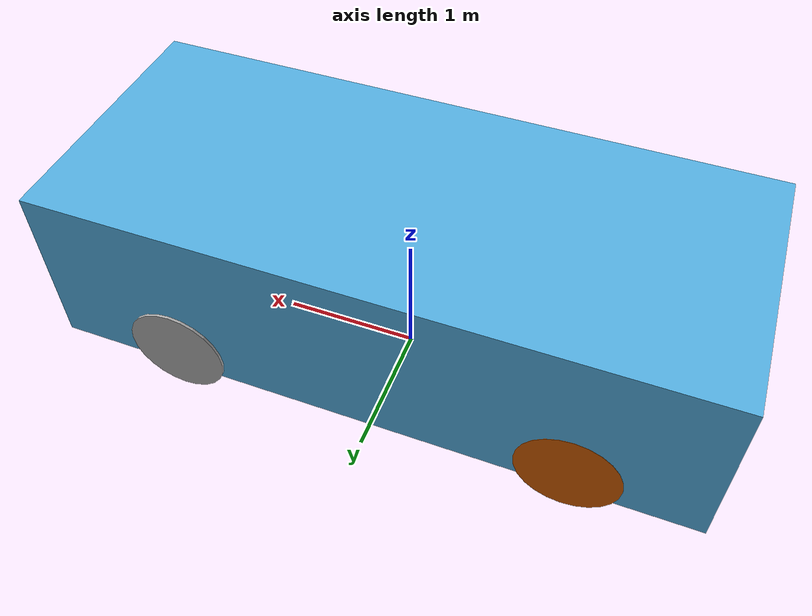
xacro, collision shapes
<?xml version="1.0"?>
<robot xmlns:xacro="http://www.ros.org/wiki/xacro" name="xbot">

  <xacro:include filename="$(find robot_describes)/urdf/ackermann_yu7.xacro"/>

  <!-- 车身 -->
  <xacro:yu7 visual_rpy="1.5708 0 0"/>

  <!-- ros2 control 声明接口 -->
  <ros2_control name="GazeboSystem" type="system">
    <hardware>
      <plugin>gz_ros2_control/GazeboSimSystem</plugin>
    </hardware>
    <joint name="rear_left_wheel_joint">
      <command_interface name="velocity" />
      <state_interface name="velocity" />
      <state_interface name="position" />
    </joint>
    <joint name="rear_right_wheel_joint">
      <command_interface name="velocity" />
      <state_interface name="velocity" />
      <state_interface name="position" />
    </joint>
    <joint name="left_wheel_steering_joint">
      <command_interface name="position" />
      <state_interface name="position" />
    </joint>
    <joint name="right_wheel_steering_joint">
      <command_interface name="position" />
      <state_interface name="position" />
    </joint>
    <joint name="front_left_wheel_joint">
      <state_interface name="position" />
      <state_interface name="velocity" />
    </joint>
    <joint name="front_right_wheel_joint">
      <state_interface name="position" />
      <state_interface name="velocity" />
    </joint>
  </ros2_control>

  <!-- gazebo 插件，管理 control manager -->
  <gazebo>
    <plugin filename="gz_ros2_control-system" name="gz_ros2_control::GazeboSimROS2ControlPlugin">
      <parameters>$(find robot_describes)/config/ackermann_drive_controller.yaml</parameters>
    </plugin>
  </gazebo>

</robot>

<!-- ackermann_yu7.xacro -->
<robot xmlns:xacro="http://www.ros.org/wiki/xacro" name="xbot">

  <xacro:macro name="yu7" params="visual_rpy">

    <!-- ==================== 参数 ==================== -->
    <xacro:property name="scale"   value="1"/>

    <!-- yu7 参数 -->
    <!-- 轮子半径 -->
    <xacro:property name="wheel_radius" value="${0.3625 * scale}"/>
    <!-- 轮子宽度 -->
    <xacro:property name="wheel_width" value="${0.242 * scale}"/>

    <!-- 车身宽度 -->
    <xacro:property name="base_width"   value="${1.95 * scale}"/>
    <!-- 车身长度 -->
    <xacro:property name="base_length"   value="${4.7 * scale}"/>
    <!-- 车身高度 -->
    <xacro:property name="base_height"   value="${1.3 * scale}"/>
    <!-- 车身 z 轴距离 -->
    <xacro:property name="base_z"   value="${0.24 * scale}"/>

    <!-- 车身重量 -->
    <xacro:property name="base_mass"   value="${1500 * scale}"/>

    <!-- 轮子重量 -->
    <xacro:property name="wheel_mass"   value="${50 * scale}"/>

    <!-- ==================== 虚拟根链接 ==================== -->
    <link name="base_footprint"/>
    <joint name="base_footprint_joint" type="fixed">
      <parent link="base_footprint"/>
      <child link="base_link"/>
      <origin xyz="0 0 0" rpy="0 0 0"/>
    </joint>

    <!-- ==================== 车身 ==================== -->
    <link name="base_link">
      <visual>
        <geometry>
          <mesh filename="package://robot_describes/model/yu7_body.glb" scale="${scale} ${scale} ${scale}"/>
        </geometry>
        <origin rpy="${visual_rpy}"/>
      </visual>
      <collision>
        <geometry>
          <box size="${base_length} ${base_width} ${base_height}"/>
        </geometry>
        <origin xyz="0 0 ${base_height / 2 + base_z}"/>
      </collision>

      <inertial>
        <mass value="${base_mass}" />
        <origin xyz="0 0 ${base_height / 2 + base_z}"/>
        <inertia ixx="${(base_mass/12) * (base_width*base_width + base_height*base_height)}" ixy="0.0" ixz="0.0" iyy="${(base_mass/12) * (base_length*base_length + base_height*base_height)}" iyz="0.0" izz="${(base_mass/12) * (base_length*base_length + base_width*base_width)}" />
      </inertial>
    </link>

    <!-- ==================== 前左轮连杆 ==================== -->
    <link name="left_wheel_steering">
      <inertial>
        <mass value="0.1"/>
        <inertia ixx="0.001" ixy="0.0" ixz="0.0" iyy="0.001" iyz="0.0" izz="0.002" />
      </inertial>
    </link>

    <joint name="left_wheel_steering_joint" type="revolute">
      <origin xyz="${-1.436 * scale} ${-0.8554 * scale} ${0.4034 * scale}"/>
      <parent link="base_link" />
      <child link="left_wheel_steering" />
      <axis xyz="0 0 1" />
      <dynamics damping="0.2" />
      <limit effort="1000.0" lower="-1.57" upper="1.57" velocity="30"/>
    </joint>

    <!-- ==================== 前右轮连杆 ==================== -->
    <link name="right_wheel_steering">
      <inertial>
        <mass value="0.1"/>
        <inertia ixx="0.001" ixy="0.0" ixz="0.0" iyy="0.001" iyz="0.0" izz="0.002" />
      </inertial>
    </link>

    <joint name="right_wheel_steering_joint" type="revolute">
      <origin xyz="${-1.436 * scale} ${0.8554 * scale} ${0.4034 * scale}"/>
      <parent link="base_link" />
      <child link="right_wheel_steering" />
      <axis xyz="0 0 1" />
      <dynamics damping="0.2" />
      <limit effort="1000.0" lower="-1.57" upper="1.57" velocity="30"/>
    </joint>

    <!-- ==================== 前左轮 ==================== -->
    <link name="front_left_wheel">
      <visual>
        <geometry>
          <mesh filename="package://robot_describes/model/yu7_wheel.glb" scale="${scale} ${scale} ${scale}"/>
        </geometry>
        <origin rpy="${visual_rpy}"/>
      </visual>
      <collision>
        <geometry>
          <cylinder radius="${wheel_radius}" length="${wheel_width}"/>
        </geometry>
        <origin rpy="1.5708 0 0"/>
      </collision>
      <inertial>
        <origin rpy="1.5708 0 0"/>
        <mass value="${wheel_mass}" />
        <inertia ixx="${(wheel_mass/12) * (3*wheel_radius*wheel_radius + wheel_width*wheel_width)}" ixy="0" ixz="0" iyy="${(wheel_mass/12) * (3*wheel_radius*wheel_radius + wheel_width*wheel_width)}" iyz="0" izz="${(wheel_mass/2) * (wheel_radius*wheel_radius)}" />
      </inertial>
    </link>

    <joint name="front_left_wheel_joint" type="continuous">
      <parent link="left_wheel_steering"/>
      <child link="front_left_wheel"/>
      <origin xyz="0 0 0"/>
      <axis xyz="0 1 0"/>
    </joint>

    <!-- ==================== 前右轮 ==================== -->
    <link name="front_right_wheel">
      <visual>
        <geometry>
          <mesh filename="package://robot_describes/model/yu7_wheel.glb" scale="${scale} ${scale} ${scale}"/>
        </geometry>
        <origin rpy="${visual_rpy}"/>
      </visual>
      <collision>
        <geometry>
          <cylinder radius="${wheel_radius}" length="${wheel_width}"/>
        </geometry>
        <origin rpy="1.5708 0 0"/>
      </collision>
      <inertial>
        <origin rpy="1.5708 0 0"/>
        <mass value="${wheel_mass}" />
        <inertia ixx="${(wheel_mass/12) * (3*wheel_radius*wheel_radius + wheel_width*wheel_width)}" ixy="0" ixz="0" iyy="${(wheel_mass/12) * (3*wheel_radius*wheel_radius + wheel_width*wheel_width)}" iyz="0" izz="${(wheel_mass/2) * (wheel_radius*wheel_radius)}" />
      </inertial>
    </link>

    <joint name="front_right_wheel_joint" type="continuous">
      <parent link="right_wheel_steering"/>
      <child link="front_right_wheel"/>
      <origin xyz="0 0 0" rpy="0 0 3.1415926"/>
      <axis xyz="0 -1 0"/>
    </joint>

    <!-- ==================== 后左轮 ==================== -->
    <link name="rear_left_wheel">
      <visual>
        <geometry>
          <mesh filename="package://robot_describes/model/yu7_wheel.glb" scale="${scale} ${scale} ${scale}"/>
        </geometry>
        <origin rpy="${visual_rpy}"/>
      </visual>
      <collision>
        <geometry>
          <cylinder radius="${wheel_radius}" length="${wheel_width}"/>
        </geometry>
        <origin rpy="1.5708 0 0"/>
      </collision>
      <inertial>
        <origin rpy="1.5708 0 0"/>
        <mass value="${wheel_mass}" />
        <inertia ixx="${(wheel_mass/12) * (3*wheel_radius*wheel_radius + wheel_width*wheel_width)}" ixy="0" ixz="0" iyy="${(wheel_mass/12) * (3*wheel_radius*wheel_radius + wheel_width*wheel_width)}" iyz="0" izz="${(wheel_mass/2) * (wheel_radius*wheel_radius)}" />
      </inertial>
    </link>

    <joint name="rear_left_wheel_joint" type="continuous">
      <parent link="base_link"/>
      <child link="rear_left_wheel"/>
      <origin xyz="${1.402 * scale} ${-0.8736 * scale} ${0.4034 * scale}"/>
      <axis xyz="0 -1 0"/>
    </joint>

    <!-- ==================== 后右轮 ==================== -->
    <link name="rear_right_wheel">
      <visual>
        <geometry>
          <mesh filename="package://robot_describes/model/yu7_wheel.glb" scale="${scale} ${scale} ${scale}"/>
        </geometry>
        <origin rpy="${visual_rpy}"/>
      </visual>
      <collision>
        <geometry>
          <cylinder radius="${wheel_radius}" length="${wheel_width}"/>
        </geometry>
        <origin rpy="1.5708 0 0"/>
      </collision>
      <inertial>
        <origin rpy="1.5708 0 0"/>
        <mass value="${wheel_mass}" />
        <inertia ixx="${(wheel_mass/12) * (3*wheel_radius*wheel_radius + wheel_width*wheel_width)}" ixy="0" ixz="0" iyy="${(wheel_mass/12) * (3*wheel_radius*wheel_radius + wheel_width*wheel_width)}" iyz="0" izz="${(wheel_mass/2) * (wheel_radius*wheel_radius)}" />
      </inertial>
    </link>

    <joint name="rear_right_wheel_joint" type="continuous">
      <parent link="base_link"/>
      <child link="rear_right_wheel"/>
      <origin xyz="${1.402 * scale} ${0.8736 * scale} ${0.4034 * scale}" rpy="0 0 3.1415926"/>
      <axis xyz="0 1 0"/>
    </joint>

  </xacro:macro>

</robot>
